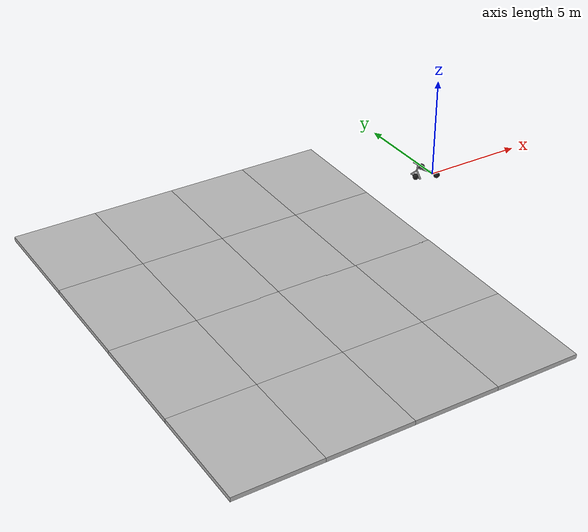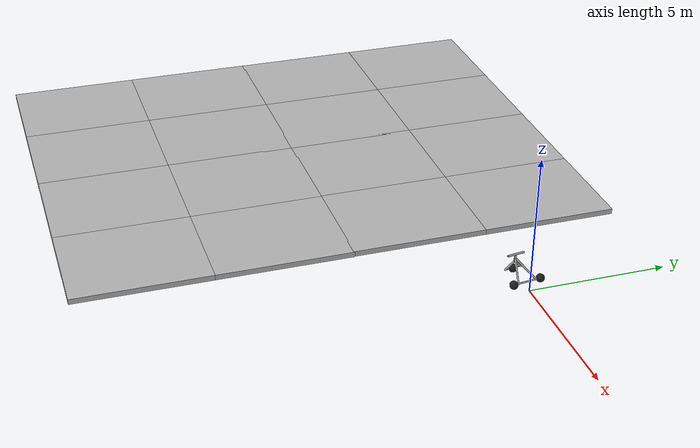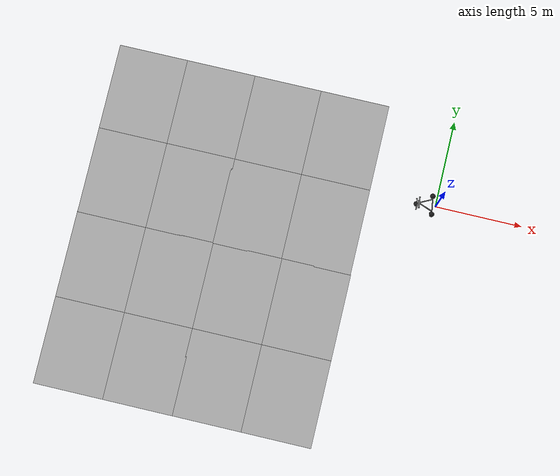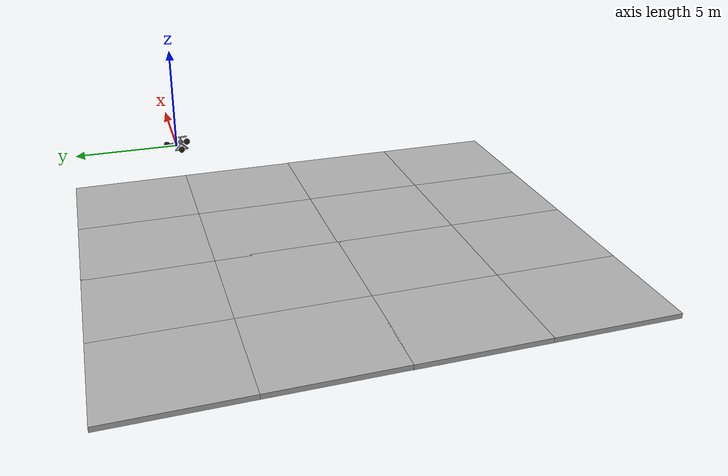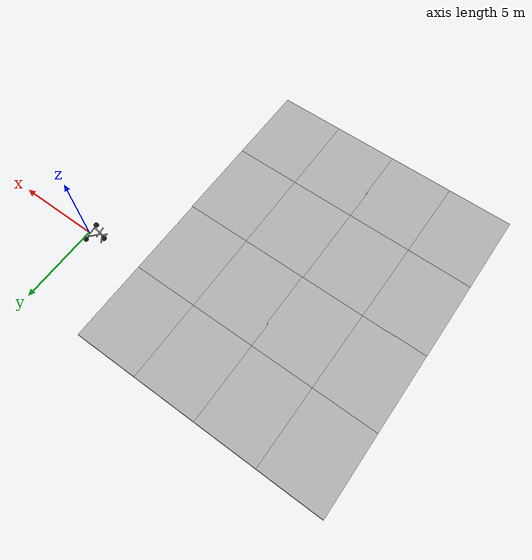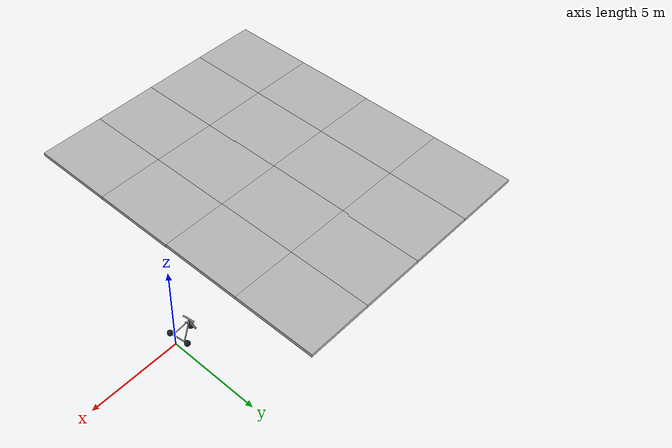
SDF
<sdf version="1.7">
 <world name="default">
  <model name="trisphere_cycle">
   <link name="frame">
    <pose>-0.408559 0 0.385023 0 -0.522021 0</pose>
    <inertial>
     <mass>10</mass>
     <inertia><ixx>0.228</ixx><iyy>0.743521</iyy><izz>0.965521</izz><ixy>0</ixy><ixz>0</ixz><iyz>0</iyz></inertia>
    </inertial>
    <collision name="axle_collision">
     <pose>-0.471335 0 0 1.5708 -0 0</pose>
     <geometry><cylinder><length>1.03923</length><radius>0.03</radius></cylinder></geometry>
    </collision>
    <visual name="axle_visual">
     <pose>-0.471335 0 0 1.5708 -0 0</pose>
     <geometry><cylinder><length>1.03923</length><radius>0.03</radius></cylinder></geometry>
     <material>
      <script><uri>file://media/materials/scripts/gazebo.material</uri><name>Gazebo/Grey</name></script>
     </material>
    </visual>
    <collision name="frame_left_collision">
     <pose>0 0.171552 0 -2.79253 1.57079 3.14159</pose>
     <geometry><cylinder><length>1.00317</length><radius>0.03</radius></cylinder></geometry>
    </collision>
    <visual name="frame_left_visual">
     <pose>0 0.171552 0 -2.79253 1.57079 3.14159</pose>
     <geometry><cylinder><length>1.00317</length><radius>0.03</radius></cylinder></geometry>
     <material>
      <script><uri>file://media/materials/scripts/gazebo.material</uri><name>Gazebo/Grey</name></script>
     </material>
    </visual>
    <collision name="frame_right_collision">
     <pose>0 -0.171552 0 2.79253 1.57079 -3.14159</pose>
     <geometry><cylinder><length>1.00317</length><radius>0.03</radius></cylinder></geometry>
    </collision>
    <visual name="frame_right_visual">
     <pose>0 -0.171552 0 2.79253 1.57079 -3.14159</pose>
     <geometry><cylinder><length>1.00317</length><radius>0.03</radius></cylinder></geometry>
     <material>
      <script><uri>file://media/materials/scripts/gazebo.material</uri><name>Gazebo/Grey</name></script>
     </material>
    </visual>
   </link>
   <link name="fork">
    <pose>0.041441 0 0.385023 0 -0.174533 0</pose>
    <inertial>
     <mass>3</mass>
     <inertia>
      <ixx>0.158203</ixx>
      <iyy>0.0583594</iyy>
      <izz>0.102656</izz>
      <ixy>0</ixy>
      <ixz>0</ixz>
      <iyz>0</iyz>
     </inertia>
    </inertial>
    <collision name="handlebars_collision">
     <pose>0 0 0.397748 1.5708 -0 0</pose>
     <geometry><cylinder><length>0.636396</length><radius>0.0375</radius></cylinder></geometry>
    </collision>
    <visual name="handlebars_visual">
     <pose>0 0 0.397748 1.5708 -0 0</pose>
     <geometry><cylinder><length>0.636396</length><radius>0.0375</radius></cylinder></geometry>
     <material>
      <script><uri>file://media/materials/scripts/gazebo.material</uri><name>Gazebo/Grey</name></script>
     </material>
    </visual>
    <collision name="headtube_collision">
     <pose>0 0 0.238649 0 -0 0</pose>
     <geometry><cylinder><length>0.318198</length><radius>0.0375</radius></cylinder></geometry>
    </collision>
    <visual name="headtube_visual">
     <pose>0 0 0.238649 0 -0 0</pose>
     <geometry><cylinder><length>0.318198</length><radius>0.0375</radius></cylinder></geometry>
     <material>
      <script><uri>file://media/materials/scripts/gazebo.material</uri><name>Gazebo/Grey</name></script>
     </material>
    </visual>
    <collision name="spindle_collision">
     <pose>0 0 -0.238649 1.5708 -0 0</pose>
     <geometry><cylinder><length>0.636396</length><radius>0.015</radius></cylinder></geometry>
    </collision>
    <visual name="spindle_visual">
     <pose>0 0 -0.238649 1.5708 -0 0</pose>
     <geometry><cylinder><length>0.636396</length><radius>0.015</radius></cylinder></geometry>
     <material>
      <script><uri>file://media/materials/scripts/gazebo.material</uri><name>Gazebo/Grey</name></script>
     </material>
    </visual>
    <collision name="fork_left_collision">
     <pose>0 0.159099 -0.07955 0.785398 -0 0</pose>
     <geometry><cylinder><length>0.45</length><radius>0.0375</radius></cylinder></geometry>
    </collision>
    <visual name="fork_left_visual">
     <pose>0 0.159099 -0.07955 0.785398 -0 0</pose>
     <geometry><cylinder><length>0.45</length><radius>0.0375</radius></cylinder></geometry>
     <material>
      <script><uri>file://media/materials/scripts/gazebo.material</uri><name>Gazebo/Grey</name></script>
     </material>
    </visual>
    <collision name="fork_right_collision">
     <pose>0 -0.159099 -0.07955 -0.785398 0 0</pose>
     <geometry><cylinder><length>0.45</length><radius>0.0375</radius></cylinder></geometry>
    </collision>
    <visual name="fork_right_visual">
     <pose>0 -0.159099 -0.07955 -0.785398 0 0</pose>
     <geometry><cylinder><length>0.45</length><radius>0.0375</radius></cylinder></geometry>
     <material>
      <script><uri>file://media/materials/scripts/gazebo.material</uri><name>Gazebo/Grey</name></script>
     </material>
    </visual>
   </link>
   <link name="wheel_front">
    <pose>0.082882 0 0.15 0 -0 0</pose>
    <inertial>
     <mass>0.5</mass>
     <inertia><ixx>0.0045</ixx><iyy>0.0045</iyy><izz>0.0045</izz><ixy>0</ixy><ixz>0</ixz><iyz>0</iyz></inertia>
    </inertial>
    <collision name="collision">
     <geometry><sphere><radius>0.15</radius></sphere></geometry>
     <surface><contact><ode><kp>1e+08</kp><kd>1</kd><min_depth>0.0005</min_depth></ode></contact></surface>
    </collision>
    <visual name="visual">
     <geometry><sphere><radius>0.15</radius></sphere></geometry>
     <material>
      <script><uri>file://media/materials/scripts/gazebo.material</uri><name>Gazebo/Black</name></script>
     </material>
    </visual>
   </link>
   <joint name="wheel_front_steer" type="revolute">
    <parent>frame</parent>
    <child>fork</child>
    <axis>
     <xyz>0 0 1</xyz>
     <limit><lower>-0.959931</lower><upper>0.959931</upper></limit>
     <dynamics><spring_reference>0</spring_reference><spring_stiffness>0</spring_stiffness></dynamics>
    </axis>
   </joint>
   <joint name="wheel_front_spin" type="revolute">
    <parent>fork</parent>
    <child>wheel_front</child>
    <axis>
     <xyz>0 1 0</xyz>
     <limit><lower>-1e+16</lower><upper>1e+16</upper></limit>
     <dynamics><spring_reference>0</spring_reference><spring_stiffness>0</spring_stiffness></dynamics>
    </axis>
   </joint>
   <link name="wheel_rear_left">
    <pose>-0.817118 0.519615 0.15 0 -0 0</pose>
    <inertial>
     <mass>0.5</mass>
     <inertia><ixx>0.0045</ixx><iyy>0.0045</iyy><izz>0.0045</izz><ixy>0</ixy><ixz>0</ixz><iyz>0</iyz></inertia>
    </inertial>
    <collision name="collision">
     <geometry><sphere><radius>0.15</radius></sphere></geometry>
     <surface><contact><ode><kp>1e+08</kp><kd>1</kd><min_depth>0.0005</min_depth></ode></contact></surface>
    </collision>
    <visual name="visual">
     <geometry><sphere><radius>0.15</radius></sphere></geometry>
     <material>
      <script><uri>file://media/materials/scripts/gazebo.material</uri><name>Gazebo/Black</name></script>
     </material>
    </visual>
   </link>
   <joint name="wheel_rear_left_spin" type="revolute">
    <parent>frame</parent>
    <child>wheel_rear_left</child>
    <axis>
     <xyz>0 1 0</xyz>
     <limit><lower>-1e+16</lower><upper>1e+16</upper></limit>
     <dynamics><spring_reference>0</spring_reference><spring_stiffness>0</spring_stiffness></dynamics>
    </axis>
   </joint>
   <link name="wheel_rear_right">
    <pose>-0.817118 -0.519615 0.15 0 -0 0</pose>
    <inertial>
     <mass>0.5</mass>
     <inertia><ixx>0.0045</ixx><iyy>0.0045</iyy><izz>0.0045</izz><ixy>0</ixy><ixz>0</ixz><iyz>0</iyz></inertia>
    </inertial>
    <collision name="collision">
     <geometry><sphere><radius>0.15</radius></sphere></geometry>
     <surface><contact><ode><kp>1e+08</kp><kd>1</kd><min_depth>0.0005</min_depth></ode></contact></surface>
    </collision>
    <visual name="visual">
     <geometry><sphere><radius>0.15</radius></sphere></geometry>
     <material>
      <script><uri>file://media/materials/scripts/gazebo.material</uri><name>Gazebo/Black</name></script>
     </material>
    </visual>
   </link>
   <joint name="wheel_rear_right_spin" type="revolute">
    <parent>frame</parent>
    <child>wheel_rear_right</child>
    <axis>
     <xyz>0 1 0</xyz>
     <limit><lower>-1e+16</lower><upper>1e+16</upper></limit>
     <dynamics><spring_reference>0</spring_reference><spring_stiffness>0</spring_stiffness></dynamics>
    </axis>
   </joint>
   <pose>-1.0232 -0.119109 0.093345 -0 1e-06 -3.00142</pose>
  </model>
  <model name="mud_box_clone_4">
   <static>1</static>
   <link name="link">
    <collision name="collision"><geometry><box><size>8 10 0.2</size></box></geometry></collision>
    <visual name="visual_1">
     <pose>-2 2.5 0 0 -0 0</pose>
     <cast_shadows>0</cast_shadows>
     <geometry><box><size>4 5 0.2</size></box></geometry>
     <material>
      <script>
       <uri>model://mud_box/materials/scripts</uri>
       <uri>model://mud_box/materials/textures</uri>
       <name>vrc/mud</name>
      </script>
     </material>
    </visual>
    <visual name="visual_2">
     <pose>2 2.5 0 0 -0 0</pose>
     <cast_shadows>0</cast_shadows>
     <geometry><box><size>4 5 0.2</size></box></geometry>
     <material>
      <script>
       <uri>model://mud_box/materials/scripts</uri>
       <uri>model://mud_box/materials/textures</uri>
       <name>vrc/mud</name>
      </script>
     </material>
    </visual>
    <visual name="visual_3">
     <pose>2 -2.5 0 0 -0 0</pose>
     <cast_shadows>0</cast_shadows>
     <geometry><box><size>4 5 0.2</size></box></geometry>
     <material>
      <script>
       <uri>model://mud_box/materials/scripts</uri>
       <uri>model://mud_box/materials/textures</uri>
       <name>vrc/mud</name>
      </script>
     </material>
    </visual>
    <visual name="visual_4">
     <pose>-2 -2.5 0 0 -0 0</pose>
     <cast_shadows>0</cast_shadows>
     <geometry><box><size>4 5 0.2</size></box></geometry>
     <material>
      <script>
       <uri>model://mud_box/materials/scripts</uri>
       <uri>model://mud_box/materials/textures</uri>
       <name>vrc/mud</name>
      </script>
     </material>
    </visual>
   </link>
   <pose>-7.85104 0.064773 0 0 -0 0</pose>
  </model>
  <model name="mud_box_clone_6">
   <static>1</static>
   <link name="link">
    <collision name="collision"><geometry><box><size>8 10 0.2</size></box></geometry></collision>
    <visual name="visual_1">
     <pose>-2 2.5 0 0 -0 0</pose>
     <cast_shadows>0</cast_shadows>
     <geometry><box><size>4 5 0.2</size></box></geometry>
     <material>
      <script>
       <uri>model://mud_box/materials/scripts</uri>
       <uri>model://mud_box/materials/textures</uri>
       <name>vrc/mud</name>
      </script>
     </material>
    </visual>
    <visual name="visual_2">
     <pose>2 2.5 0 0 -0 0</pose>
     <cast_shadows>0</cast_shadows>
     <geometry><box><size>4 5 0.2</size></box></geometry>
     <material>
      <script>
       <uri>model://mud_box/materials/scripts</uri>
       <uri>model://mud_box/materials/textures</uri>
       <name>vrc/mud</name>
      </script>
     </material>
    </visual>
    <visual name="visual_3">
     <pose>2 -2.5 0 0 -0 0</pose>
     <cast_shadows>0</cast_shadows>
     <geometry><box><size>4 5 0.2</size></box></geometry>
     <material>
      <script>
       <uri>model://mud_box/materials/scripts</uri>
       <uri>model://mud_box/materials/textures</uri>
       <name>vrc/mud</name>
      </script>
     </material>
    </visual>
    <visual name="visual_4">
     <pose>-2 -2.5 0 0 -0 0</pose>
     <cast_shadows>0</cast_shadows>
     <geometry><box><size>4 5 0.2</size></box></geometry>
     <material>
      <script>
       <uri>model://mud_box/materials/scripts</uri>
       <uri>model://mud_box/materials/textures</uri>
       <name>vrc/mud</name>
      </script>
     </material>
    </visual>
   </link>
   <pose>-7.82555 -9.89311 0 0 -0 0</pose>
  </model>
  <model name="mud_box_clone_11">
   <static>1</static>
   <link name="link">
    <collision name="collision"><geometry><box><size>8 10 0.2</size></box></geometry></collision>
    <visual name="visual_1">
     <pose>-2 2.5 0 0 -0 0</pose>
     <cast_shadows>0</cast_shadows>
     <geometry><box><size>4 5 0.2</size></box></geometry>
     <material>
      <script>
       <uri>model://mud_box/materials/scripts</uri>
       <uri>model://mud_box/materials/textures</uri>
       <name>vrc/mud</name>
      </script>
     </material>
    </visual>
    <visual name="visual_2">
     <pose>2 2.5 0 0 -0 0</pose>
     <cast_shadows>0</cast_shadows>
     <geometry><box><size>4 5 0.2</size></box></geometry>
     <material>
      <script>
       <uri>model://mud_box/materials/scripts</uri>
       <uri>model://mud_box/materials/textures</uri>
       <name>vrc/mud</name>
      </script>
     </material>
    </visual>
    <visual name="visual_3">
     <pose>2 -2.5 0 0 -0 0</pose>
     <cast_shadows>0</cast_shadows>
     <geometry><box><size>4 5 0.2</size></box></geometry>
     <material>
      <script>
       <uri>model://mud_box/materials/scripts</uri>
       <uri>model://mud_box/materials/textures</uri>
       <name>vrc/mud</name>
      </script>
     </material>
    </visual>
    <visual name="visual_4">
     <pose>-2 -2.5 0 0 -0 0</pose>
     <cast_shadows>0</cast_shadows>
     <geometry><box><size>4 5 0.2</size></box></geometry>
     <material>
      <script>
       <uri>model://mud_box/materials/scripts</uri>
       <uri>model://mud_box/materials/textures</uri>
       <name>vrc/mud</name>
      </script>
     </material>
    </visual>
   </link>
   <pose>-15.76 0.065303 0 0 -0 0</pose>
  </model>
  <model name="mud_box_clone_12">
   <static>1</static>
   <link name="link">
    <collision name="collision"><geometry><box><size>8 10 0.2</size></box></geometry></collision>
    <visual name="visual_1">
     <pose>-2 2.5 0 0 -0 0</pose>
     <cast_shadows>0</cast_shadows>
     <geometry><box><size>4 5 0.2</size></box></geometry>
     <material>
      <script>
       <uri>model://mud_box/materials/scripts</uri>
       <uri>model://mud_box/materials/textures</uri>
       <name>vrc/mud</name>
      </script>
     </material>
    </visual>
    <visual name="visual_2">
     <pose>2 2.5 0 0 -0 0</pose>
     <cast_shadows>0</cast_shadows>
     <geometry><box><size>4 5 0.2</size></box></geometry>
     <material>
      <script>
       <uri>model://mud_box/materials/scripts</uri>
       <uri>model://mud_box/materials/textures</uri>
       <name>vrc/mud</name>
      </script>
     </material>
    </visual>
    <visual name="visual_3">
     <pose>2 -2.5 0 0 -0 0</pose>
     <cast_shadows>0</cast_shadows>
     <geometry><box><size>4 5 0.2</size></box></geometry>
     <material>
      <script>
       <uri>model://mud_box/materials/scripts</uri>
       <uri>model://mud_box/materials/textures</uri>
       <name>vrc/mud</name>
      </script>
     </material>
    </visual>
    <visual name="visual_4">
     <pose>-2 -2.5 0 0 -0 0</pose>
     <cast_shadows>0</cast_shadows>
     <geometry><box><size>4 5 0.2</size></box></geometry>
     <material>
      <script>
       <uri>model://mud_box/materials/scripts</uri>
       <uri>model://mud_box/materials/textures</uri>
       <name>vrc/mud</name>
      </script>
     </material>
    </visual>
   </link>
   <pose>-15.7692 -9.89658 0 0 -0 0</pose>
  </model>
 </world>
</sdf>
